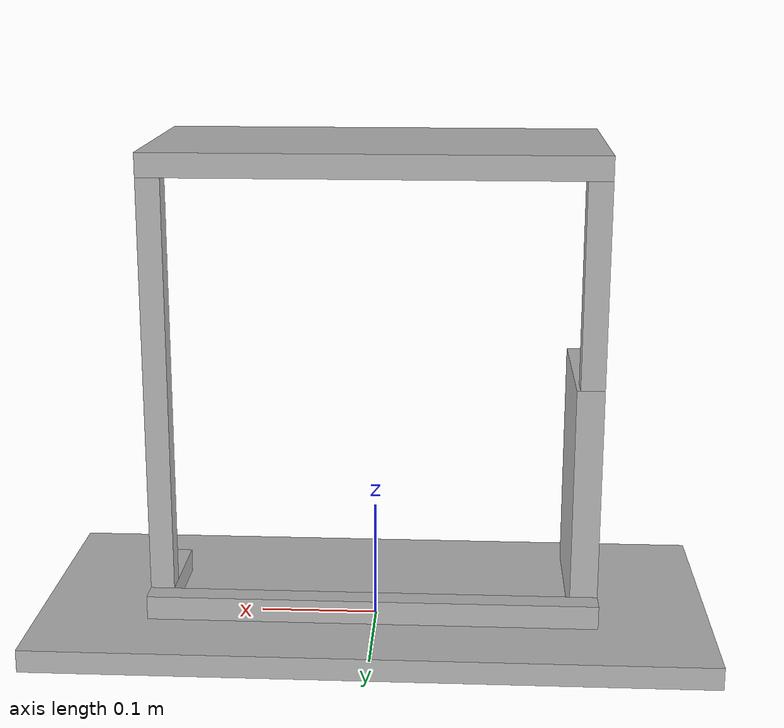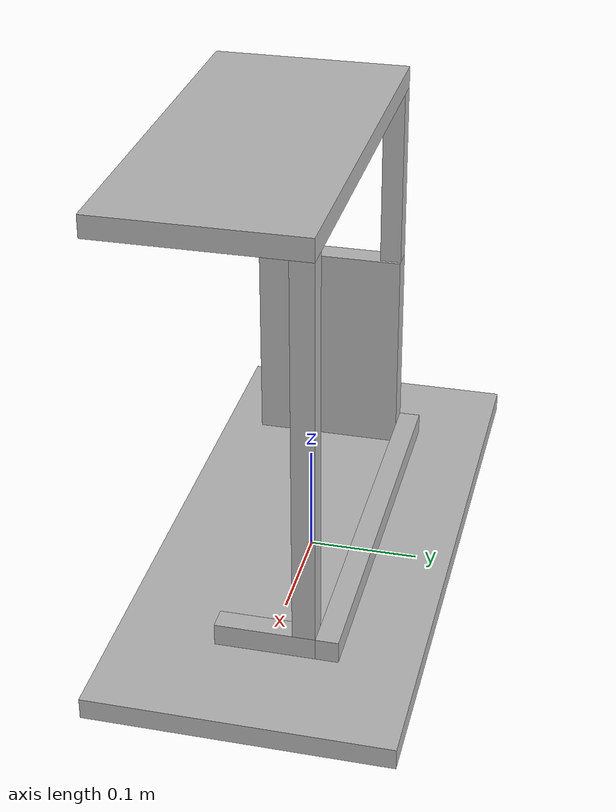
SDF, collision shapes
<?xml version="1.0"?>
<sdf version="1.7" xmlns:drake="drake.mit.edu">
  <model name="vivo_custom_single_shelf">
    <link name="vivo_custom_single_shelf">
      <pose>0 0 0 0 0 0</pose>
      <inertial>
        <pose>0 -0.00636 0.137 0 0 0</pose>
        <mass>3.3</mass>
        <inertia>
          <ixx> 0.120</ixx>
          <ixy> 0.000</ixy>
          <ixz> 0.000</ixz>
          <iyy> 0.177</iyy>
          <iyz> 0.012</iyz>
          <izz> 0.090</izz>
        </inertia>
      </inertial>
      <visual name="vivo_custom_single_shelf">
        <pose>0 0 0 0 0 0</pose>
        <geometry>
          <mesh>
            <uri>/data/kylehatch/lbm_eval/lbm_eval_models/kitchen_accessories/shelves/assets/vivo_custom_single_shelf.gltf</uri>
            <scale>1.0 1.0 1.0</scale>
          </mesh>
        </geometry>
      </visual>
      <collision name="vivo_custom_single_shelf_base">
        <pose>0.0 0.004 0.0095 0.0 -0.0 0.0</pose>
        <geometry>
          <box>
            <size>0.567 0.264 0.019</size>
          </box>
        </geometry>
        <drake:proximity_properties>
          <drake:mu_dynamic>0.5</drake:mu_dynamic>
          <drake:mu_static>0.5</drake:mu_static>
          <drake:hydroelastic_modulus>1e7</drake:hydroelastic_modulus>
          <drake:hunt_crossley_dissipation>40</drake:hunt_crossley_dissipation>
          <drake:compliant_hydroelastic/>
        </drake:proximity_properties>
      </collision>
      <collision name="vivo_custom_single_shelf_base_mid_bracket">
        <pose>-0.0 0.058 0.02902 0.0 -0.0 0.0</pose>
        <geometry>
          <box>
            <size>0.378 0.02 0.02004</size>
          </box>
        </geometry>
        <drake:proximity_properties>
          <drake:mu_dynamic>0.5</drake:mu_dynamic>
          <drake:mu_static>0.5</drake:mu_static>
          <drake:hydroelastic_modulus>1e7</drake:hydroelastic_modulus>
          <drake:hunt_crossley_dissipation>40</drake:hunt_crossley_dissipation>
          <drake:compliant_hydroelastic/>
        </drake:proximity_properties>
      </collision>
      <collision name="vivo_custom_single_shelf_base_right_bracket">
        <pose>0.179 0.004 0.02902 0.0 -0.0 0.0</pose>
        <geometry>
          <box>
            <size>0.02 0.088 0.02004</size>
          </box>
        </geometry>
        <drake:proximity_properties>
          <drake:mu_dynamic>0.5</drake:mu_dynamic>
          <drake:mu_static>0.5</drake:mu_static>
          <drake:hydroelastic_modulus>1e7</drake:hydroelastic_modulus>
          <drake:hunt_crossley_dissipation>40</drake:hunt_crossley_dissipation>
          <drake:compliant_hydroelastic/>
        </drake:proximity_properties>
      </collision>
      <collision name="vivo_custom_single_shelf_left_leg">
        <pose>-0.179 0.038 0.304 0.0 -0.0 0.0</pose>
        <geometry>
          <box>
            <size>0.02 0.02 0.17</size>
          </box>
        </geometry>
        <drake:proximity_properties>
          <drake:mu_dynamic>0.5</drake:mu_dynamic>
          <drake:mu_static>0.5</drake:mu_static>
          <drake:hydroelastic_modulus>1e7</drake:hydroelastic_modulus>
          <drake:hunt_crossley_dissipation>40</drake:hunt_crossley_dissipation>
          <drake:compliant_hydroelastic/>
        </drake:proximity_properties>
      </collision>
      <collision name="vivo_custom_single_shelf_right_leg">
        <pose>0.179 0.038 0.214 0.0 -0.0 0.0</pose>
        <geometry>
          <box>
            <size>0.02 0.02 0.35</size>
          </box>
        </geometry>
        <drake:proximity_properties>
          <drake:mu_dynamic>0.5</drake:mu_dynamic>
          <drake:mu_static>0.5</drake:mu_static>
          <drake:hydroelastic_modulus>1e7</drake:hydroelastic_modulus>
          <drake:hunt_crossley_dissipation>40</drake:hunt_crossley_dissipation>
          <drake:compliant_hydroelastic/>
        </drake:proximity_properties>
      </collision>
      <collision name="vivo_custom_single_shelf_top">
        <pose>-0.0 -0.044 0.399 0.0 -0.0 0.0</pose>
        <geometry>
          <box>
            <size>0.378 0.184 0.02</size>
          </box>
        </geometry>
        <drake:proximity_properties>
          <drake:mu_dynamic>0.5</drake:mu_dynamic>
          <drake:mu_static>0.5</drake:mu_static>
          <drake:hydroelastic_modulus>1e7</drake:hydroelastic_modulus>
          <drake:hunt_crossley_dissipation>40</drake:hunt_crossley_dissipation>
          <drake:compliant_hydroelastic/>
        </drake:proximity_properties>
      </collision>
      <collision name="side_stop_collision">
        <!-- 0.166 (where the shelf blackstop starts) + collision thickness / 2 -->
        <pose>-0.1775 -0.022 0.119 0 0 0</pose>
        <geometry>
          <box>
            <!-- Note that this is thicker than the visual geometry to ensure
                 that it doesn't have pass through issues. -->
            <size>0.023 0.14 0.2</size>
          </box>
        </geometry>
        <drake:proximity_properties>
          <drake:mu_dynamic>0.5</drake:mu_dynamic>
          <drake:mu_static>0.5</drake:mu_static>
          <drake:hydroelastic_modulus>1e7</drake:hydroelastic_modulus>
          <drake:hunt_crossley_dissipation>40</drake:hunt_crossley_dissipation>
          <drake:compliant_hydroelastic/>
        </drake:proximity_properties>
      </collision>

    </link>
    <frame name="origin">
      <pose relative_to="vivo_custom_single_shelf">0 0 0 0 0 0</pose>
    </frame>
    <frame name="plywood_bottom_center__z_up">
      <pose relative_to="vivo_custom_single_shelf">0 0 0 0 0 0</pose>
    </frame>
    <frame name="plywood_top_center__z_up">
      <pose relative_to="vivo_custom_single_shelf">0 0 0.019 0 0 0</pose>
    </frame>
    <frame name="shelf_top_center__z_up">
      <pose relative_to="vivo_custom_single_shelf">0 -0.0436 0.409 0 0 0</pose>
    </frame>
  </model>
</sdf>
